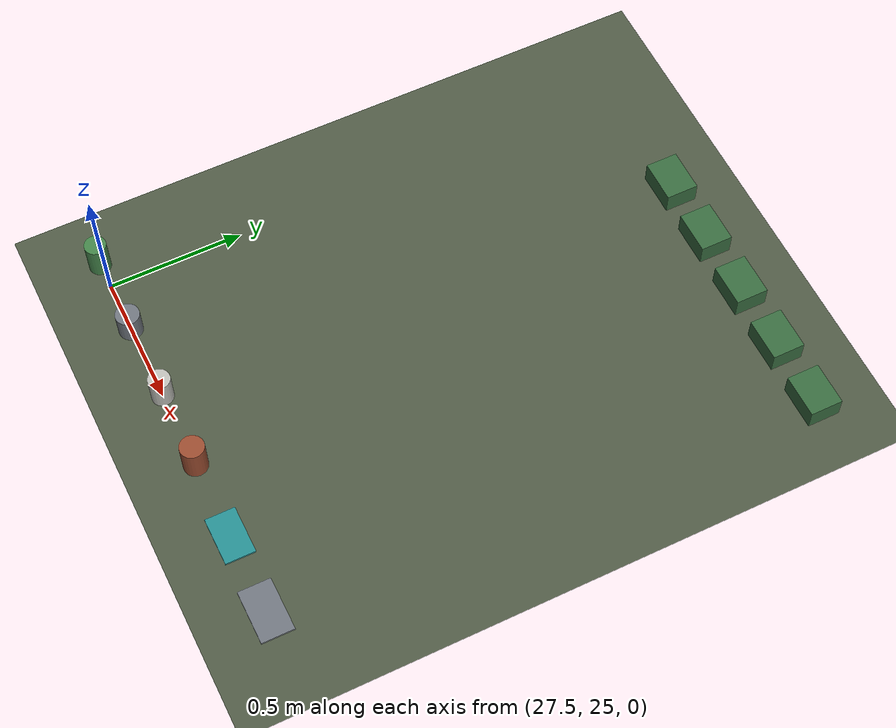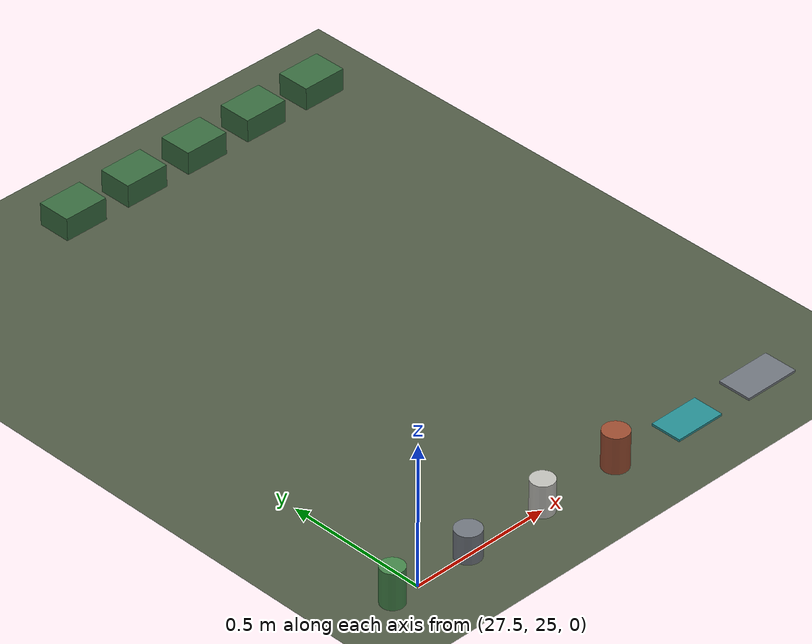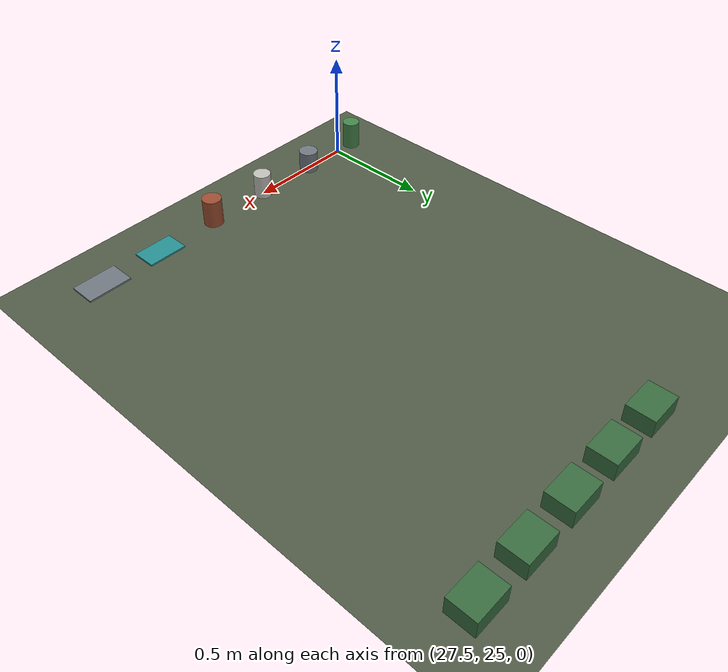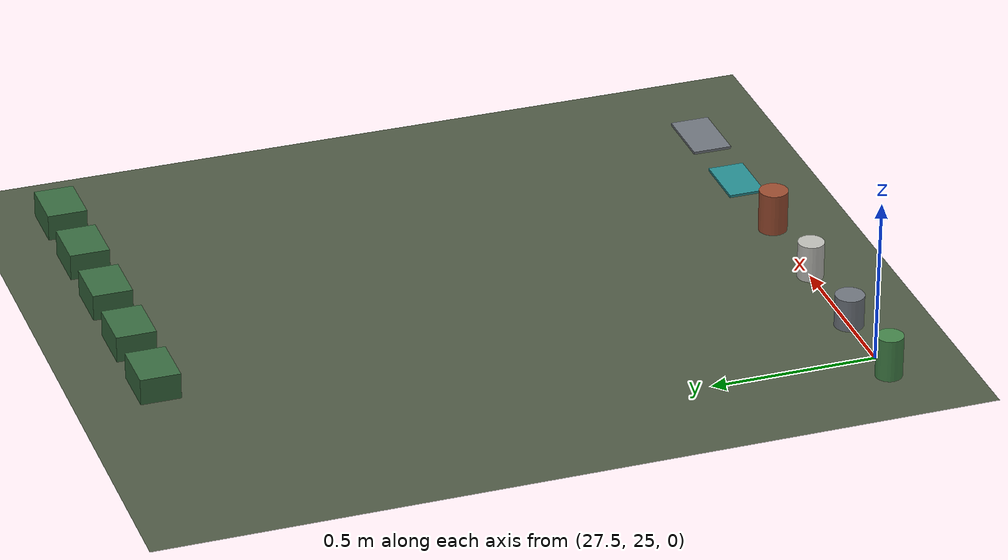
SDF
<sdf version="1.9">
 <world name="world_d_mixed_curb_vegetation">
  <model name="ground">
   <static>true</static>
   <link name="ground">
    <collision name="collision">
     <geometry><plane><normal>0 0 1</normal><size>80 80</size></plane></geometry>
    </collision>
    <visual name="visual">
     <geometry><plane><normal>0 0 1</normal><size>80 80</size></plane></geometry>
     <material>
      <ambient>0.31 0.35 0.27 1</ambient>
      <diffuse>0.31 0.35 0.27 1</diffuse>
      <specular>0.10 0.10 0.10 1</specular>
      <pbr><metal><roughness>0.76</roughness><metalness>0</metalness></metal></pbr>
     </material>
    </visual>
   </link>
  </model>
  <model name="can_dented_dots">
   <static>true</static>
   <pose>27.400 25 0.0650 0 0 0</pose>
   <link name="body">
    <visual name="visual">
     <geometry><cylinder><radius>0.0400</radius><length>0.1300</length></cylinder></geometry>
     <material>
      <ambient>0.26667 0.51765 0.29020 1</ambient>
      <diffuse>0.26667 0.51765 0.29020 1</diffuse>
      <specular>0.10 0.10 0.10 1</specular>
      <pbr><metal><roughness>0.68</roughness><metalness>0</metalness></metal></pbr>
     </material>
    </visual>
    <collision name="collision">
     <geometry><cylinder><radius>0.0400</radius><length>0.1300</length></cylinder></geometry>
    </collision>
   </link>
   <plugin filename="gz-sim-label-system" name="gz::sim::systems::Label"><label>2</label></plugin>
  </model>
  <model name="can_flat_side">
   <static>true</static>
   <pose>27.700 25 0.0500 0 0 0</pose>
   <link name="body">
    <visual name="visual">
     <geometry><cylinder><radius>0.0440</radius><length>0.1000</length></cylinder></geometry>
     <material>
      <ambient>0.43922 0.46275 0.49412 1</ambient>
      <diffuse>0.43922 0.46275 0.49412 1</diffuse>
      <specular>0.10 0.10 0.10 1</specular>
      <pbr><metal><roughness>0.68</roughness><metalness>0</metalness></metal></pbr>
     </material>
    </visual>
    <collision name="collision">
     <geometry><cylinder><radius>0.0440</radius><length>0.1000</length></cylinder></geometry>
    </collision>
   </link>
   <plugin filename="gz-sim-label-system" name="gz::sim::systems::Label"><label>2</label></plugin>
  </model>
  <model name="can_matte_rings">
   <static>true</static>
   <pose>28.000 25 0.0575 0 0 0</pose>
   <link name="body">
    <visual name="visual">
     <geometry><cylinder><radius>0.0400</radius><length>0.1150</length></cylinder></geometry>
     <material>
      <ambient>0.74510 0.74510 0.72157 1</ambient>
      <diffuse>0.74510 0.74510 0.72157 1</diffuse>
      <specular>0.10 0.10 0.10 1</specular>
      <pbr><metal><roughness>0.68</roughness><metalness>0</metalness></metal></pbr>
     </material>
    </visual>
    <collision name="collision">
     <geometry><cylinder><radius>0.0400</radius><length>0.1150</length></cylinder></geometry>
    </collision>
   </link>
   <plugin filename="gz-sim-label-system" name="gz::sim::systems::Label"><label>2</label></plugin>
  </model>
  <model name="can_unseen_crushed">
   <static>true</static>
   <pose>28.300 25 0.0650 0 0 0</pose>
   <link name="body">
    <visual name="visual">
     <geometry><cylinder><radius>0.0440</radius><length>0.1300</length></cylinder></geometry>
     <material>
      <ambient>0.60392 0.29804 0.18824 1</ambient>
      <diffuse>0.60392 0.29804 0.18824 1</diffuse>
      <specular>0.10 0.10 0.10 1</specular>
      <pbr><metal><roughness>0.68</roughness><metalness>0</metalness></metal></pbr>
     </material>
    </visual>
    <collision name="collision">
     <geometry><cylinder><radius>0.0440</radius><length>0.1300</length></cylinder></geometry>
    </collision>
   </link>
   <plugin filename="gz-sim-label-system" name="gz::sim::systems::Label"><label>2</label></plugin>
  </model>
  <model name="paper_folded_grid">
   <static>true</static>
   <pose>28.600 25 0.0080 0 0 0</pose>
   <link name="body">
    <visual name="visual">
     <geometry><box><size>0.1800 0.1100 0.0080</size></box></geometry>
     <material>
      <ambient>0.14902 0.55686 0.57255 1</ambient>
      <diffuse>0.14902 0.55686 0.57255 1</diffuse>
      <specular>0.10 0.10 0.10 1</specular>
      <pbr><metal><roughness>0.68</roughness><metalness>0</metalness></metal></pbr>
     </material>
    </visual>
    <collision name="collision"><geometry><box><size>0.1800 0.1100 0.0080</size></box></geometry></collision>
   </link>
   <plugin filename="gz-sim-label-system" name="gz::sim::systems::Label"><label>3</label></plugin>
  </model>
  <model name="paper_torn_text">
   <static>true</static>
   <pose>28.900 25 0.0080 0 0 0</pose>
   <link name="body">
    <visual name="visual">
     <geometry><box><size>0.2000 0.1200 0.0080</size></box></geometry>
     <material>
      <ambient>0.43922 0.46275 0.49412 1</ambient>
      <diffuse>0.43922 0.46275 0.49412 1</diffuse>
      <specular>0.10 0.10 0.10 1</specular>
      <pbr><metal><roughness>0.68</roughness><metalness>0</metalness></metal></pbr>
     </material>
    </visual>
    <collision name="collision"><geometry><box><size>0.2000 0.1200 0.0080</size></box></geometry></collision>
   </link>
   <plugin filename="gz-sim-label-system" name="gz::sim::systems::Label"><label>3</label></plugin>
  </model>
  <model name="negative_bottle_like_reusable_cone">
   <static>true</static>
   <pose>28.0 27 0.04 0 0 0</pose>
   <link name="body">
    <visual name="visual">
     <geometry><box><size>0.16 0.12 0.08</size></box></geometry>
     <material>
      <ambient>0.22 0.42 0.25 1</ambient>
      <diffuse>0.22 0.42 0.25 1</diffuse>
      <specular>0.10 0.10 0.10 1</specular>
      <pbr><metal><roughness>0.68</roughness><metalness>0</metalness></metal></pbr>
     </material>
    </visual>
    <collision name="collision"><geometry><box><size>0.16 0.12 0.08</size></box></geometry></collision>
   </link>
   <plugin filename="gz-sim-label-system" name="gz::sim::systems::Label"><label>0</label></plugin>
  </model>
  <model name="negative_can_like_bollard">
   <static>true</static>
   <pose>28.25 27 0.04 0 0 0</pose>
   <link name="body">
    <visual name="visual">
     <geometry><box><size>0.16 0.12 0.08</size></box></geometry>
     <material>
      <ambient>0.22 0.42 0.25 1</ambient>
      <diffuse>0.22 0.42 0.25 1</diffuse>
      <specular>0.10 0.10 0.10 1</specular>
      <pbr><metal><roughness>0.68</roughness><metalness>0</metalness></metal></pbr>
     </material>
    </visual>
    <collision name="collision"><geometry><box><size>0.16 0.12 0.08</size></box></geometry></collision>
   </link>
   <plugin filename="gz-sim-label-system" name="gz::sim::systems::Label"><label>0</label></plugin>
  </model>
  <model name="negative_red_obstacle">
   <static>true</static>
   <pose>28.5 27 0.04 0 0 0</pose>
   <link name="body">
    <visual name="visual">
     <geometry><box><size>0.16 0.12 0.08</size></box></geometry>
     <material>
      <ambient>0.22 0.42 0.25 1</ambient>
      <diffuse>0.22 0.42 0.25 1</diffuse>
      <specular>0.10 0.10 0.10 1</specular>
      <pbr><metal><roughness>0.68</roughness><metalness>0</metalness></metal></pbr>
     </material>
    </visual>
    <collision name="collision"><geometry><box><size>0.16 0.12 0.08</size></box></geometry></collision>
   </link>
   <plugin filename="gz-sim-label-system" name="gz::sim::systems::Label"><label>0</label></plugin>
  </model>
  <model name="negative_green_obstacle">
   <static>true</static>
   <pose>28.75 27 0.04 0 0 0</pose>
   <link name="body">
    <visual name="visual">
     <geometry><box><size>0.16 0.12 0.08</size></box></geometry>
     <material>
      <ambient>0.22 0.42 0.25 1</ambient>
      <diffuse>0.22 0.42 0.25 1</diffuse>
      <specular>0.10 0.10 0.10 1</specular>
      <pbr><metal><roughness>0.68</roughness><metalness>0</metalness></metal></pbr>
     </material>
    </visual>
    <collision name="collision"><geometry><box><size>0.16 0.12 0.08</size></box></geometry></collision>
   </link>
   <plugin filename="gz-sim-label-system" name="gz::sim::systems::Label"><label>0</label></plugin>
  </model>
  <model name="negative_blue_obstacle">
   <static>true</static>
   <pose>29.0 27 0.04 0 0 0</pose>
   <link name="body">
    <visual name="visual">
     <geometry><box><size>0.16 0.12 0.08</size></box></geometry>
     <material>
      <ambient>0.22 0.42 0.25 1</ambient>
      <diffuse>0.22 0.42 0.25 1</diffuse>
      <specular>0.10 0.10 0.10 1</specular>
      <pbr><metal><roughness>0.68</roughness><metalness>0</metalness></metal></pbr>
     </material>
    </visual>
    <collision name="collision"><geometry><box><size>0.16 0.12 0.08</size></box></geometry></collision>
   </link>
   <plugin filename="gz-sim-label-system" name="gz::sim::systems::Label"><label>0</label></plugin>
  </model>
 </world>
</sdf>
